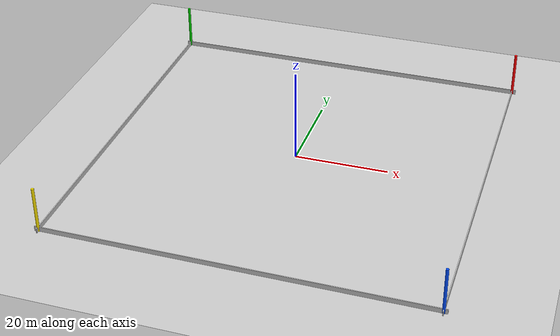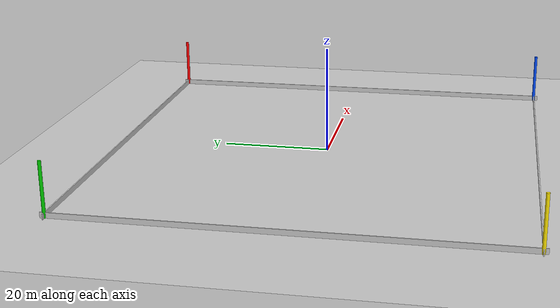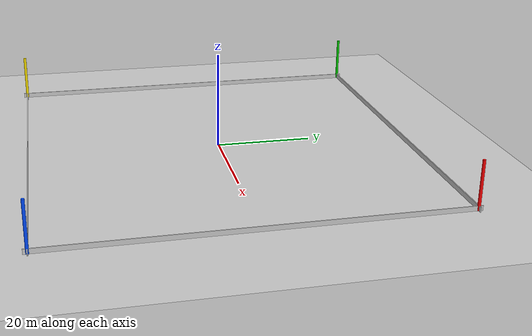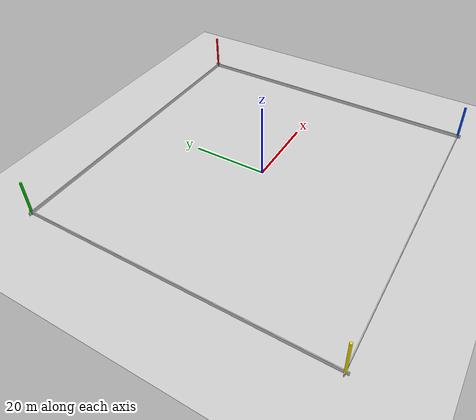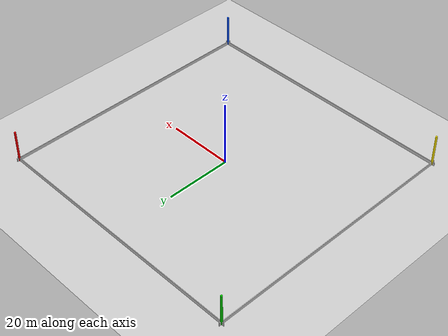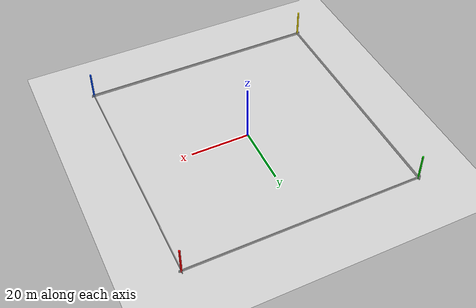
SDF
<?xml version="1.0" ?>
<sdf version="1.6">
  <world name="simple_world">

    <!-- ================== Sol ================== -->
    <model name="ground_plane">
      <static>true</static>
      <link name="link">
        <collision name="collision">
          <geometry>
            <plane>
              <normal>0 0 1</normal>
              <size>100 100</size>
            </plane>
          </geometry>
        </collision>
        <visual name="visual">
          <geometry>
            <plane>
              <normal>0 0 1</normal>
              <size>100 100</size>
            </plane>
          </geometry>
          <material>
            <ambient>0.8 0.8 0.8 1</ambient>
            <diffuse>0.8 0.8 0.8 1</diffuse>
            <specular>0.8 0.8 0.8 1</specular>
          </material>
        </visual>
      </link>
    </model>

    <!-- ================== Lumière ================== -->
    <light name="sun" type="directional">
      <cast_shadows>true</cast_shadows>
      <pose>0 0 10 0 0 0</pose>
      <diffuse>1 1 1 1</diffuse>
      <specular>0.2 0.2 0.2 1</specular>
      <direction>-0.5 0.1 -0.9</direction>
    </light>

    <!-- ================== Gravity et physique ================== -->
    <gravity>0 0 -9.8</gravity>
    <physics name='default_physics' type='ode'>
      <max_step_size>0.001</max_step_size>
      <real_time_factor>1</real_time_factor>
      <real_time_update_rate>1000</real_time_update_rate>
      <ode>
        <solver>
          <type>quick</type>
          <iters>50</iters>  <!-- Augmente les itérations -->
          <sor>1.3</sor>
        </solver>
      </ode>
    </physics>

    <!-- ================== Scene ================== -->
    <scene>
      <ambient>0.4 0.4 0.4 1</ambient>
      <background>0.7 0.7 0.7 1</background>
      <shadows>true</shadows>
    </scene>

    <!--  MURS  -->

    <model name="wall_north">
      <static>true</static>
      <pose>0 40 0.5 0 0 0</pose>
      <link name="link">
        <collision name="col">
          <geometry><box><size>81.6 0.2 1</size></box></geometry>
        </collision>
        <visual name="vis">
          <geometry><box><size>81.6 0.2 1</size></box></geometry>
          <material><ambient>0.8 0.8 0.8 1</ambient><diffuse>0.8 0.8 0.8 1</diffuse></material>
        </visual>
      </link>
    </model>

    <model name="wall_south">
      <static>true</static>
      <pose>0 -40 0.5 0 0 0</pose>
      <link name="link">
        <collision name="col">
          <geometry><box><size>81.6 0.2 1</size></box></geometry>
        </collision>
        <visual name="vis">
          <geometry><box><size>81.6 0.2 1</size></box></geometry>
          <material><ambient>0.8 0.8 0.8 1</ambient><diffuse>0.8 0.8 0.8 1</diffuse></material>
        </visual>
      </link>
    </model>

    <model name="wall_east">
      <static>true</static>
      <pose>40 0 0.5 0 0 0</pose>
      <link name="link">
        <collision name="col">
          <geometry><box><size>0.2 81.6 1</size></box></geometry>
        </collision>
        <visual name="vis">
          <geometry><box><size>0.2 81.6 1</size></box></geometry>
          <material><ambient>0.8 0.8 0.8 1</ambient><diffuse>0.8 0.8 0.8 1</diffuse></material>
        </visual>
      </link>
    </model>

    <model name="wall_west">
      <static>true</static>
      <pose>-40 0 0.5 0 0 0</pose>
      <link name="link">
        <collision name="col">
          <geometry><box><size>0.2 81.6 1</size></box></geometry>
        </collision>
        <visual name="vis">
          <geometry><box><size>0.2 81.6 1</size></box></geometry>
          <material><ambient>0.8 0.8 0.8 1</ambient><diffuse>0.8 0.8 0.8 1</diffuse></material>
        </visual>
      </link>
    </model>

    <!--  BALISES aux 4 coins  (cylindres hauts et colorés)       -->

    <model name="tower_NE">
      <static>true</static>
      <pose>40 40 5 0 0 0</pose>
      <link name="link">
        <collision name="col">
          <geometry><cylinder><radius>0.3</radius><length>10.0</length></cylinder></geometry>
        </collision>
        <visual name="vis">
          <geometry><cylinder><radius>0.3</radius><length>10.0</length></cylinder></geometry>
          <material><ambient>1 0 0 1</ambient><diffuse>1 0 0 1</diffuse></material>
        </visual>
      </link>
    </model>

    <model name="tower_NW">
      <static>true</static>
      <pose>-40 40 5 0 0 0</pose>
      <link name="link">
        <collision name="col">
          <geometry><cylinder><radius>0.3</radius><length>10.0</length></cylinder></geometry>
        </collision>
        <visual name="vis">
          <geometry><cylinder><radius>0.3</radius><length>10.0</length></cylinder></geometry>
          <material><ambient>0 0.8 0 1</ambient><diffuse>0 0.8 0 1</diffuse></material>
        </visual>
      </link>
    </model>

    <model name="tower_SE">
      <static>true</static>
      <pose>40 -40 5 0 0 0</pose>
      <link name="link">
        <collision name="col">
          <geometry><cylinder><radius>0.3</radius><length>10.0</length></cylinder></geometry>
        </collision>
        <visual name="vis">
          <geometry><cylinder><radius>0.3</radius><length>10.0</length></cylinder></geometry>
          <material><ambient>0 0.3 1 1</ambient><diffuse>0 0.3 1 1</diffuse></material>
        </visual>
      </link>
    </model>

    <model name="tower_SW">
      <static>true</static>
      <pose>-40 -40 5 0 0 0</pose>
      <link name="link">
        <collision name="col">
          <geometry><cylinder><radius>0.3</radius><length>10.0</length></cylinder></geometry>
        </collision>
        <visual name="vis">
          <geometry><cylinder><radius>0.3</radius><length>10.0</length></cylinder></geometry>
          <material><ambient>1 0.9 0 1</ambient><diffuse>1 0.9 0 1</diffuse></material>
        </visual>
      </link>
    </model>

  </world>
</sdf>
